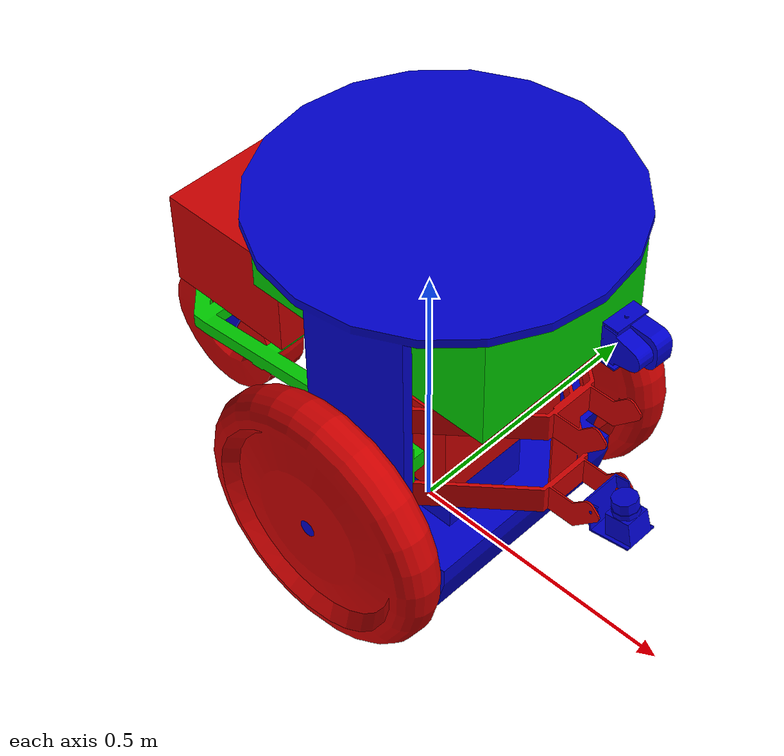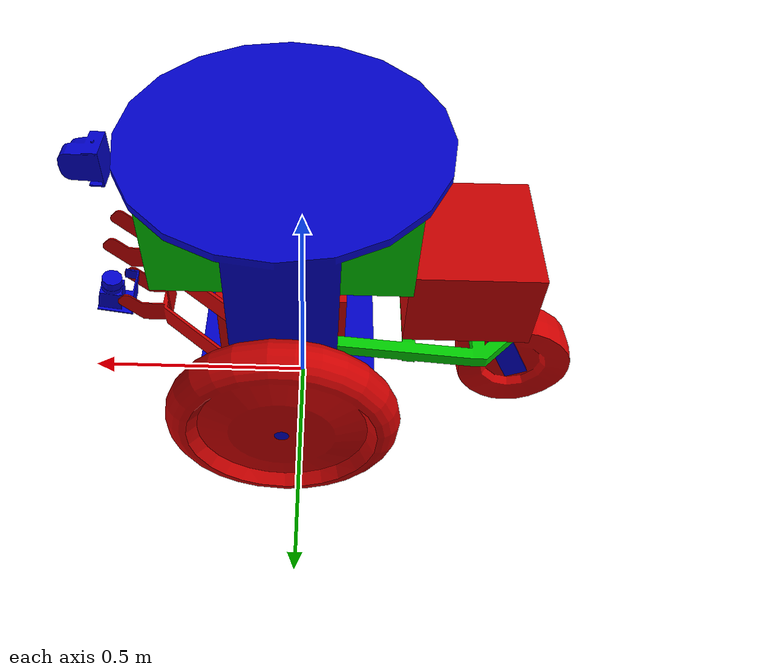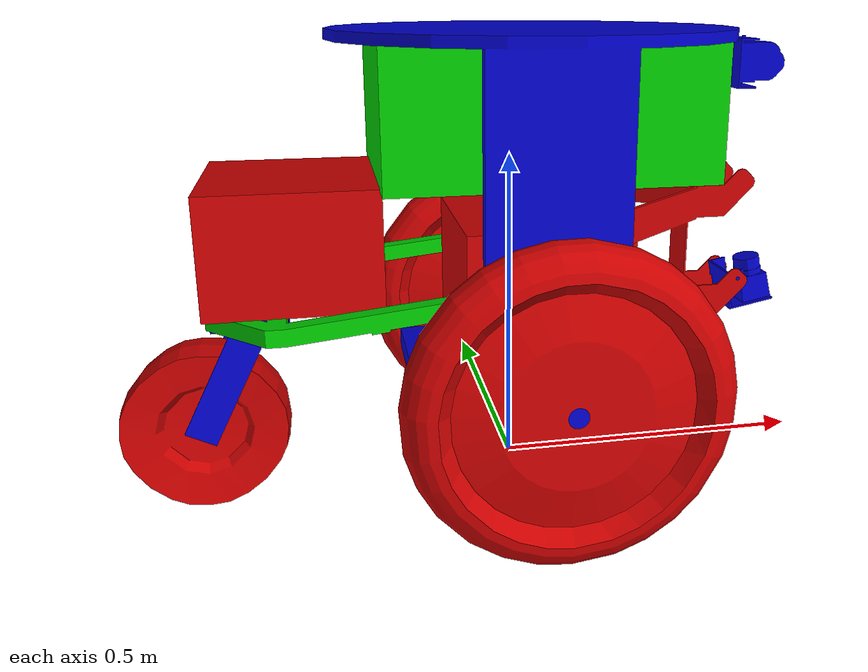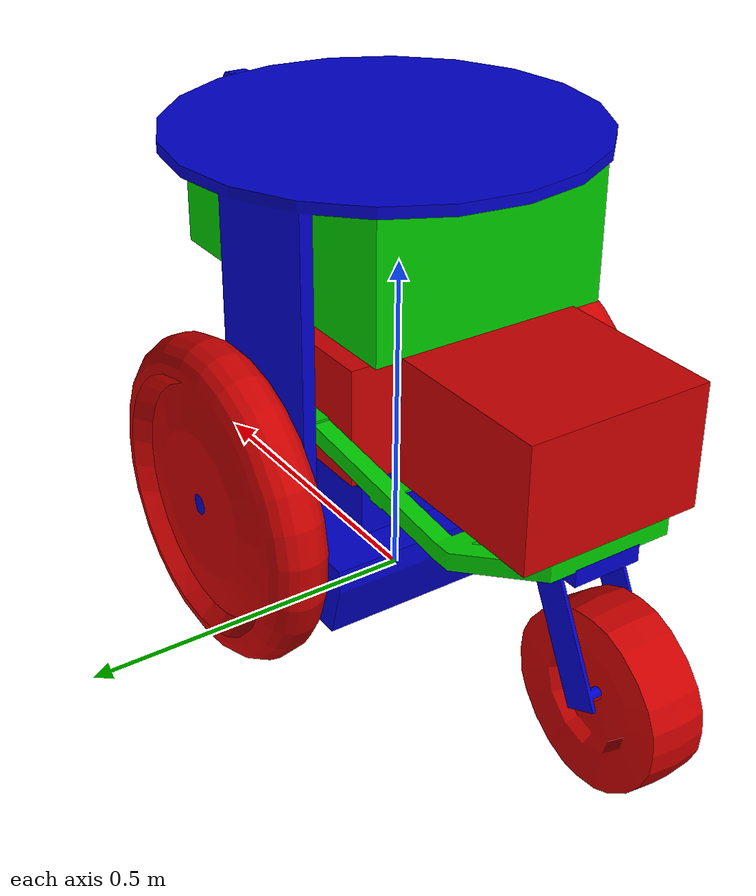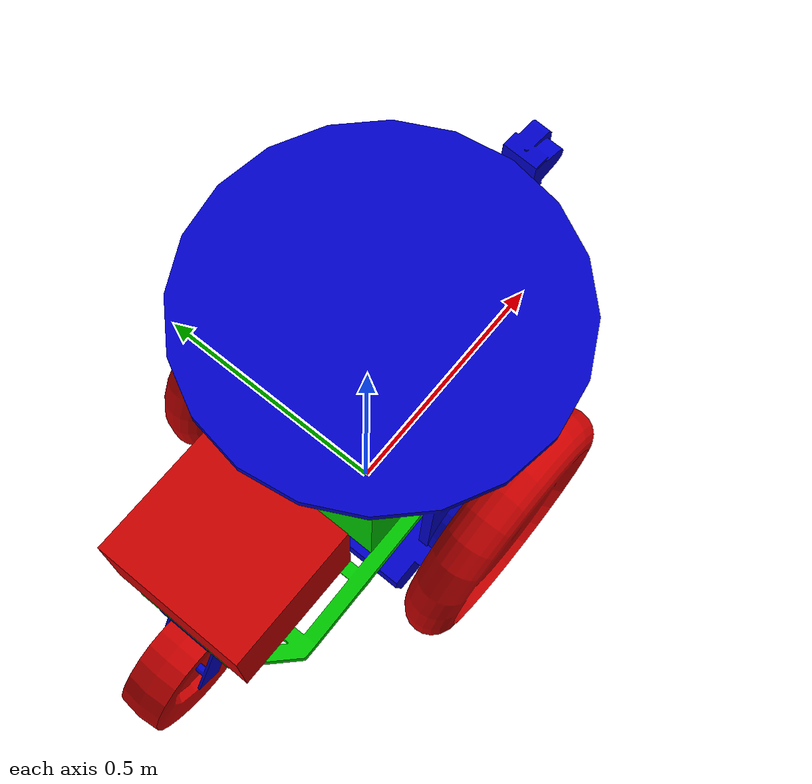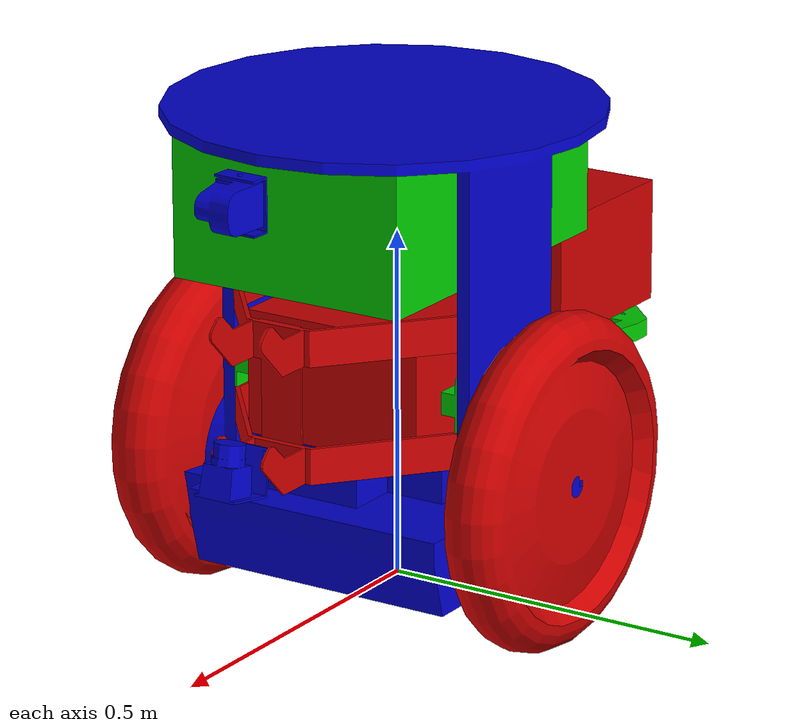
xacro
<?xml version="1.0"?>
<robot name="segbot" xmlns:xacro="http://ros.org/wiki/xacro">
    <xacro:arg name="namespace" default="false"/>

    <xacro:include filename="$(find segbot_description)/urdf/base.urdf.xacro"/>
    <xacro:include filename="$(find segbot_description)/urdf/sensors.urdf.xacro"/>

    <xacro:include filename="$(find segbot_description)/urdf/materials.xacro"/>
    <xacro:include filename="$(find segbot_description)/gazebo/gazebo.urdf.xacro"/>

    <xacro:base name="base" namespace="$(arg namespace)"/>
    <xacro:sensors name="sensors" namespace="$(arg namespace)"/>
</robot>

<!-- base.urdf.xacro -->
<robot xmlns:xacro="http://ros.org/wiki/xacro">
    <xacro:include filename="$(find segbot_description)/urdf/base.gazebo.xacro"/>
    <xacro:include filename="$(find segbot_description)/urdf/base.transmission.xacro"/>

    <xacro:macro name="base" params="name namespace">
        <!-- JOINT LIMIT VALUES FOR EFFORT AND VELOCITY NEED TO BE ADDED FOR
        REVOLUTE AND CONTINUOUS JOINTS
        -->

        <!-- base_footprint is a fictitious link(frame) that is on the ground
        right below base_link origin; navigation stack depends on this frame -->
        <link name="base_footprint">
            <inertial>
                <mass value="0.000001"/>
                <origin xyz="0 0 0"/>
                <inertia ixx="0.01" ixy="0.0" ixz="0.0"
                        iyy="0.01" iyz="0.0"
                        izz="0.01"/>
            </inertial>
        </link>

        <!-- Links -->
        <link name="base_link">
            <inertial>
                <origin xyz="0 -0.3 0" rpy="0 0 0"/>
                <mass value="90.72"/>
                <inertia ixx="1.2285" ixy="0" ixz="0"
                        iyy="1.961064" iyz="0"
                        izz="1.337364"/>
            </inertial>

            <visual>
                <origin xyz="0 0 0" rpy="0 0 0"/>
                <geometry name="segway_base_geom">
                    <mesh filename="package://segbot_description/meshes/segway_base.stl"/>
                </geometry>
                <material name="Blue"/>
            </visual>

            <collision>
                <origin xyz="0 0 0" rpy="0 0 0"/>
                <geometry name="segway_base_collision_geom">
                    <mesh filename="package://segbot_description/meshes/convex/segway_base_convex.stlb"/>
                </geometry>
            </collision>

            <collision>
                <origin xyz="-0.03164 0.132315 0.00167" rpy="1.5708 0 0"/>
                <geometry name="segway_base_table_geom">
                    <cylinder radius="0.4054" length="0.01587"/>
                </geometry>
            </collision>
        </link>

        <link name="segway_left_wheel">
            <inertial>
                <origin xyz="0 0 0" rpy="0 0 0"/>
                <mass value="3.87"/>
                <inertia ixx="0.0852" ixy="0" ixz="0"
                        iyy="0.0852" iyz="0"
                        izz="0.1654"/>
            </inertial>

            <visual>
                <origin xyz="0 0 0" rpy="0 0 0"/>
                <geometry name="segway_left_wheel_geom">
                    <mesh filename="package://segbot_description/meshes/segway_wheel.stl"/>
                </geometry>
                <material name="Red"/>
            </visual>

            <collision>
                <origin xyz="0 0 0" rpy="0 0 0"/>
                <geometry name="segway_left_wheel_collision_geom">
      	             <cylinder radius="0.2365" length="0.093"/>
                </geometry>
            </collision>
        </link>

        <link name="segway_right_wheel">
            <inertial>
                <origin xyz="0 0 0" rpy="0 0 0"/>
                <mass value="3.87"/>
                <inertia ixx="0.0852" ixy="0" ixz="0"
                        iyy="0.0852" iyz="0"
                        izz="0.1654"/>
            </inertial>

            <visual>
                <origin xyz="0 0 0" rpy="0 0 0"/>
                <geometry name="segway_right_wheel_geom">
                    <mesh filename="package://segbot_description/meshes/segway_wheel.stl"/>
                </geometry>
                <material name="Red"/>
            </visual>

            <collision>
                <origin xyz="0 0 0" rpy="0 0 0"/>
                <geometry name="segway_right_wheel_collision_geom">
      	             <cylinder radius="0.2365" length="0.093"/>
                </geometry>
            </collision>
        </link>

        <link name="segway_trailer">
            <inertial>
                <origin xyz="0.15 0.075 0" rpy="0 0 0"/>
                <mass value="34.54"/>
                <inertia ixx="0.288" ixy="0" ixz="0"
                        iyy="0.547" iyz="0"
                        izz="0.446"/>
            </inertial>

            <visual>
                <origin xyz="0 0 0" rpy="0 0 0"/>
                <geometry name="segway_trailer-geom">
                    <mesh filename="package://segbot_description/meshes/trailer.stl"/>
                </geometry>
                <material name="Green"/>
            </visual>

            <collision>
                <origin xyz="0 0 0" rpy="0 0 0"/>
                <geometry name="segway_trailer_collision_geom">
                    <mesh filename="package://segbot_description/meshes/convex/trailer_convex.stlb"/>
                </geometry>
            </collision>
        </link>

        <link name="segway_trailer_wheel_caster">
            <inertial>
                <origin xyz="0 0 0" rpy="0 0 0"/>
                <mass value="1.2"/>
                <inertia ixx="0.01" ixy="0" ixz="0"
                        iyy="0.01" iyz="0"
                        izz="0.01"/>
            </inertial>

            <visual>
                <origin xyz="0 0 0" rpy="0 0 0"/>
                <geometry name="segway_trailer_wheel_caster-geom">
                    <mesh filename="package://segbot_description/meshes/trailer_wheel_caster.stl"/>
                </geometry>
                <material name="Blue"/>
            </visual>

            <collision>
                <origin xyz="0 0 0" rpy="0 0 0"/>
                <geometry name="segway_trailer_wheel_caster_collision_geom">
                    <mesh filename="package://segbot_description/meshes/convex/trailer_wheel_caster_convex.stlb"/>
                </geometry>
            </collision>
        </link>

        <link name="segway_trailer_wheel">
            <inertial>
                <origin xyz="0 0 0" rpy="0 0 0"/>
                <mass value="2.5"/>
                <inertia ixx="0.042" ixy="0" ixz="0"
                        iyy="0.042" iyz="0"
                        izz="0.082"/>
            </inertial>

            <visual>
                <origin xyz="0 0 0" rpy="0 0 0"/>
                <geometry name="segway_trailer_wheel-geom">
                    <mesh filename="package://segbot_description/meshes/trailer_wheel.stl"/>
                </geometry>
                <material name="Red"/>
            </visual>

            <collision>
                <origin xyz="0 0 0" rpy="0 0 0"/>
                <geometry name="segway_trailer_wheel_collision_geom">
                    <cylinder radius="0.1285" length="0.097"/>
                </geometry>
            </collision>
        </link>

        <link name="battery_one">
            <inertial>
                <origin xyz="0 0 0" rpy="0 0 0"/>
                <mass value="22.68"/>
                <inertia ixx="0.201" ixy="0" ixz="0"
                        iyy="0.263" iyz="0"
                        izz="0.182"/>
            </inertial>

            <visual>
                <origin xyz="0 0 0" rpy="0 0 0"/>
                <geometry name="battery_one_geom">
	               <box size="0.254 0.178 0.273"/>
                </geometry>
                <material name="Red" />
            </visual>

            <collision>
                <origin xyz="0 0 0" rpy="0 0 0"/>
                <geometry name="battery_one_collision_geom">
                    <box size="0.254 0.178 0.273"/>
                </geometry>
            </collision>
        </link>

        <link name="battery_two">
            <inertial>
                <origin xyz="0 0 0" rpy="0 0 0"/>
                <mass value="22.68"/>
                <inertia ixx="0.201" ixy="0" ixz="0"
                        iyy="0.263" iyz="0"
                        izz="0.182"/>
            </inertial>

            <visual>
                <origin xyz="0 0 0" rpy="0 0 0"/>
                <geometry name="battery_two_geom">
	                   <box size="0.254 0.178 0.273"/>
                </geometry>
                <material name="Red"/>
            </visual>

            <collision>
                <origin xyz="0 0 0" rpy="0 0 0" />
                <geometry name="battery_two_collision_geom">
                    <box size="0.254 0.178 0.273"/>
                </geometry>
            </collision>
        </link>

        <link name="computer">
            <inertial>
                <origin xyz="0 0 0" rpy="0 0 0"/>
                <mass value="4.54"/>
                <inertia ixx="0.063" ixy="0" ixz="0"
                        iyy="0.136" iyz="0"
                        izz="0.103"/>
            </inertial>

            <visual>
                <origin xyz="0 0 0" rpy="0 0 0"/>
                <geometry name="computer_geom">
                    <box size="0.484 0.198 0.356"/>
                </geometry>
                <material name="Green"/>
            </visual>

            <collision>
                <origin xyz="0 0 0" rpy="0 0 0"/>
                <geometry name="segway_base_collision_geom">
                    <box size="0.484 0.198 0.356"/>
                </geometry>
            </collision>
        </link>

        <link name="segway_laser_bracket">
            <inertial>
                <origin xyz="0 0 0" rpy="0 0 0"/>
                <mass value="2.27"/>
                <inertia ixx="0.01" ixy="0" ixz="0"
                        iyy="0.01" iyz="0"
                        izz="0.01"/>
            </inertial>

            <visual>
                <origin xyz="0 0 0" rpy="0 0 0"/>
                <geometry name="segway_laser_bracket-geom">
                    <mesh filename="package://segbot_description/meshes/laser_bracket.stl"/>
                </geometry>
                <material name="Red"/>
            </visual>

            <collision>
                <origin xyz="0 0 0" rpy="0 0 0"/>
                <geometry name="segway_laser_bracket_collision_geom">
                    <mesh filename="package://segbot_description/meshes/convex/laser_bracket_convex.stlb"/>
                </geometry>
            </collision>
        </link>

        <link name="R283_hokuyo_laser1">
            <inertial>
                <origin xyz="-0.025 -0.017 0" rpy="0 0 0"/>
                <mass value="0.37"/>
                <inertia ixx="0.0004" ixy="0" ixz="0"
                        iyy="0.0004" iyz="0"
                        izz="0.0004"/>
            </inertial>

            <visual>
                <origin xyz="0 0 0" rpy="0 0 0"/>
                <geometry name="R283_hokuyo_laser1-geom">
                    <mesh filename="package://segbot_description/meshes/R283_hokuyo_laser1.stl"/>
                </geometry>
                <material name="Blue"/>
            </visual>

            <collision>
                <origin xyz="0 0 0" rpy="0 0 0"/>
                <geometry name="R283_hokuyo_laser1_collision_geom">
                    <mesh filename="package://segbot_description/meshes/convex/R283_hokuyo_laser1_convex.stlb"/>
                </geometry>
            </collision>

        </link>

        <link name="R313_hokuyo_laser2">
            <inertial>
                <origin xyz="-0.023 0 0" rpy="3.14159 0 0"/>
                <mass value="0.37"/>
                <inertia ixx="0.0004" ixy="0" ixz="0"
                        iyy="0.0004" iyz="0"
                        izz="0.0004"/>
            </inertial>

            <visual>
                <origin xyz="0 0 0" rpy="3.14159 0 0"/>
                <geometry name="R313_hokuyo_laser2-geom">
                    <mesh filename="package://segbot_description/meshes/R313_hokuyo_laser2.stl"/>
                </geometry>
                <material name="Blue"/>
            </visual>

            <collision>
                <origin xyz="0 0 0" rpy="3.14159 0 0"/>
                <geometry name="R283_hokuyo_laser1_collision_geom">
                <mesh filename="package://segbot_description/meshes/convex/R313_hokuyo_laser2_convex.stlb"/>
                </geometry>
            </collision>
        </link>

        <!-- Joints -->

        <joint name="base_footprint_joint" type="fixed">
            <origin xyz="0 0 0.55" rpy="1.57 0 3.14159"/>
            <child link="base_link"/>
            <parent link="base_footprint"/>
        </joint>

        <joint name="segway_left_wheel_joint" type="continuous">
            <origin xyz="-0.031 -0.353 0.272" rpy="0 0 0"/>
            <axis xyz="0 0 1"/>
            <limit effort="122" velocity="500"/>
            <parent link="base_link" />
            <child link="segway_left_wheel" />
            <calibration reference_position="0.0"/>
        </joint>

        <joint name="segway_right_wheel_joint" type="continuous">
            <origin xyz="-0.031 -0.353 -0.272" rpy="0 0 0"/>
            <axis xyz="0 0 1"/>
            <limit effort="122" velocity="500"/>
            <parent link="base_link" />
            <child link="segway_right_wheel"/>
            <calibration reference_position="0.0"/>
        </joint>

        <joint name="segway_trailer_joint" type="fixed">
            <origin xyz="0.162 -0.233 0.002" rpy="0 0 0"/>
            <parent link="base_link"/>
            <child link="segway_trailer" />
            <calibration reference_position="0.0"/>
        </joint>

        <joint name="segway_trailer_wheel_caster_joint" type="continuous">
            <origin xyz="0.244 -0.038 0.002" rpy="0 0 0"/>
            <axis xyz="0 1 0"/>
            <parent link="segway_trailer"/>
            <child link="segway_trailer_wheel_caster"/>
            <calibration reference_position="0.0"/>
        </joint>

        <joint name="segway_trailer_wheel_joint" type="continuous">
            <origin xyz="0.076 -0.187 0.002" rpy="0 0 0"/>
            <axis xyz="0 0 1"/>
            <parent link="segway_trailer_wheel_caster"/>
            <child link="segway_trailer_wheel"/>
            <calibration reference_position="0.0"/>
        </joint>

        <joint name="battery_one_joint" type="fixed">
            <origin xyz="-0.037 -0.231 0" rpy="0 0 0"/>
            <parent link="base_link"/>
            <child link="battery_one"/>
            <calibration reference_position="0.0"/>
        </joint>

        <joint name="battery_two_joint" type="fixed">
            <origin xyz="0.171 0.074 0" rpy="0 0 0"/>
            <parent link="segway_trailer"/>
            <child link="battery_two"/>
            <calibration reference_position="0.0"/>
        </joint>

        <joint name="computer_joint" type="fixed">
            <origin xyz="-0.033 0.025 0" rpy="0 0 0"/>
            <parent link="base_link"/>
            <child link="computer"/>
            <calibration reference_position="0.0"/>
        </joint>

        <joint name="segway_laser_bracket_joint" type="fixed">
            <origin xyz="-0.213 -0.2 0.002" rpy="0 0 0"/>
            <parent link="base_link"/>
            <child link="segway_laser_bracket"/>
            <calibration reference_position="0.0"/>
        </joint>

        <joint name="R283_hokuyo_laser1_joint" type="revolute">
            <origin xyz="-0.162 -0.062 0" rpy="0 0 -0.1848"/>
            <axis xyz="0 0 1"/>
            <limit lower="-1.047" upper="1.047" effort="50" velocity="50"/>
            <parent link="segway_laser_bracket"/>
            <child link="R283_hokuyo_laser1"/>
            <calibration reference_position="0.0"/>
        </joint>

        <joint name="R313_hokuyo_laser2_joint" type="revolute">
            <origin xyz="-0.162 0.283 0" rpy="1.57 -0.05 0" />
            <axis xyz="0 0 1"/>
            <limit lower="-1.047" upper="1.047" effort="50" velocity="50"/>
            <parent link="segway_laser_bracket" />
            <child link="R313_hokuyo_laser2" />
            <calibration reference_position="0.0"/>
        </joint>

        <xacro:base_gazebo name="${name}" namespace="${namespace}"/>
        <xacro:base_transmission name="${name}" namespace="${namespace}"/>
    </xacro:macro>
</robot>

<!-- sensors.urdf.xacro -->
<robot xmlns:xacro="http://ros.org/wiki/xacro">
    <xacro:include filename="$(find segbot_description)/urdf/sensors.gazebo.xacro"/>

    <xacro:macro name="sensors" params="name namespace">
        <!-- JOINT LIMIT VALUES FOR EFFORT AND VELOCITY NEED TO BE ADDED FOR
        REVOLUTE AND CONTINUOUS JOINTS -->

        <!-- Laser Base Laser -->

        <!-- Joint to world. Simply change the name and parent link when
        attaching to own robot -->
        <joint name="base_laser_joint" type="fixed">
            <origin xyz="-0.057 0.010 0" rpy="1.57 0 3.14"/>
            <parent link="R283_hokuyo_laser1"/>
            <child link="base_laser_link"/>
        </joint>

        <!-- Laser body. Negligible geometry -->
        <link name="base_laser_link">
            <inertial>
                <mass value="0.000001"/>
                <origin xyz="0 0 0" rpy="0 0 0"/>
                <inertia ixx="0.0001" ixy="0" ixz="0"
                         iyy="0.000001" iyz="0"
                         izz="0.0001"/>
            </inertial>
            <visual>
                <origin xyz="0 0 0" rpy="0 0 0"/>
                <geometry>
                    <box size="0.000 0.000 0.000"/>
                </geometry>
                <material name="Red"/>
            </visual>
            <collision>
                <origin xyz="0 0 0" rpy="0 0 0"/>
                <geometry>
                    <box size="0.0 0.0 0.0"/>
                </geometry>
            </collision>
        </link>

        <!-- Laser Tilt Laser -->
        <!-- Joint to world. Simply change the name and parent link when
        attaching to own robot -->
        <joint name="tilt_laser_joint" type="fixed">
            <origin xyz="-0.056 -0.020 0" rpy="-1.57 0 3.14"/>
            <parent link="R313_hokuyo_laser2"/>
            <child link="tilt_laser_link"/>
        </joint>

        <!-- Laser Body. Negligible geometry -->
        <link name="tilt_laser_link">
            <inertial>
                <mass value="0.000001"/>
                <origin xyz="0 0 0" rpy="0 0 0"/>
                <inertia ixx="0.0001" ixy="0" ixz="0"
                         iyy="0.000001" iyz="0"
                         izz="0.0001"/>
            </inertial>
            <visual>
                <origin xyz="0 0 0" rpy="0 0 0"/>
                <geometry>
                <box size="0 0 0"/>
                </geometry>
                <material name="Red"/>
            </visual>
            <collision>
                <origin xyz="0 0 0" rpy="0 0 0"/>
                <geometry>
                    <box size="0 0 0"/>
                </geometry>
            </collision>
        </link>

        <xacro:sensors_gazebo name="${name}" namespace="${namespace}"/>
    </xacro:macro>
</robot>

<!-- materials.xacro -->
<robot xmlns:xacro="http://ros.org/wiki/xacro">
    <material name="Blue">
        <color rgba="0.0 0.0 0.8 1.0"/>
    </material>
    <material name="Green">
        <color rgba="0.0 0.8 0.0 1.0"/>
    </material>
    <material name="Red">
        <color rgba="0.8 0.0 0.0 1.0"/>
    </material>
    <material name="White">
        <color rgba="0.0 0.0 0.0 1.0"/>
    </material>
</robot>
